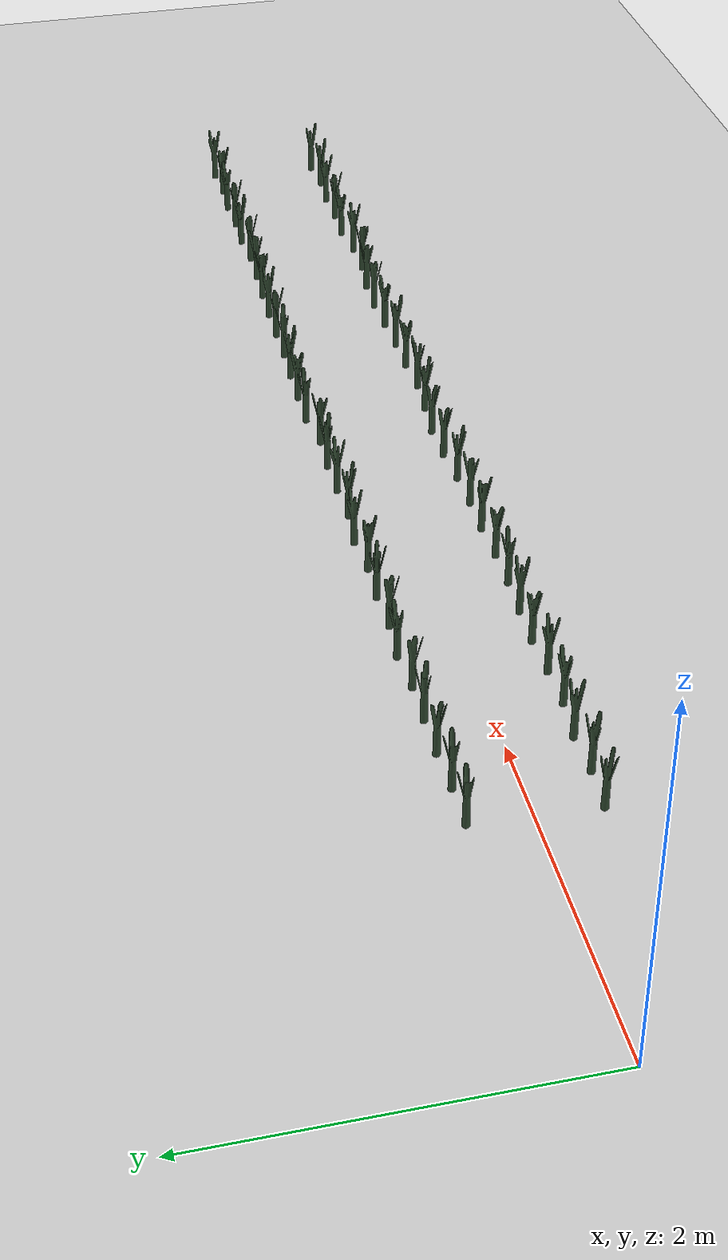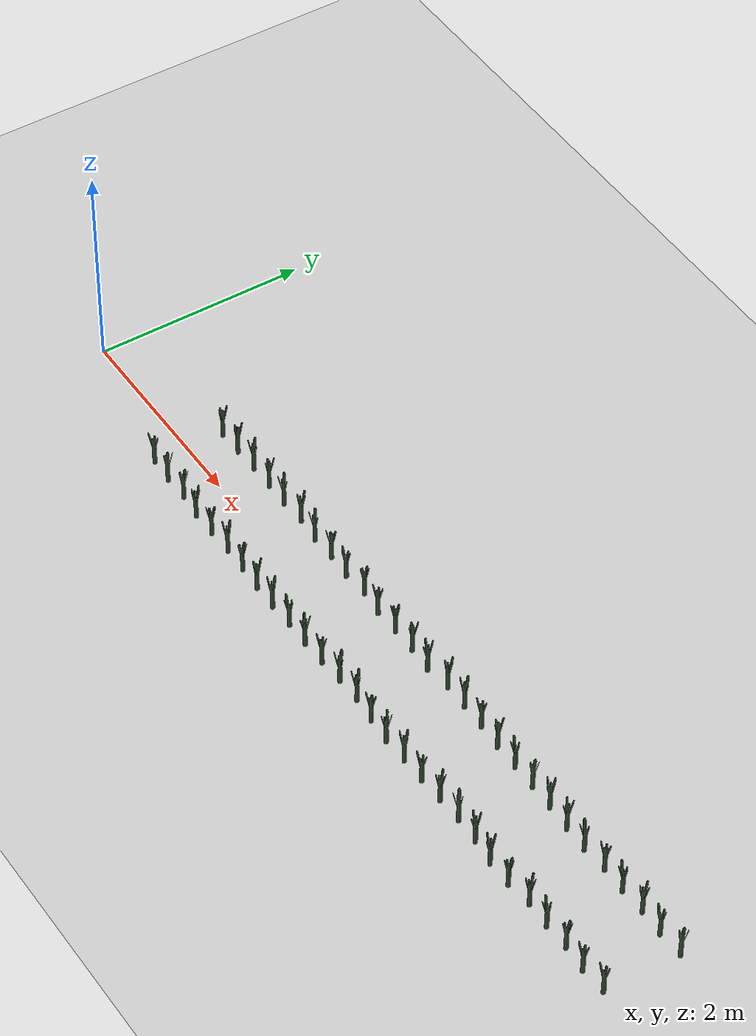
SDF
<sdf version="1.6">
 <world name="default">
  <light name="sun" type="directional">
   <pose>0 0 10 0 -0 0</pose>
   <diffuse>0.5 0.5 0.5 1</diffuse>
   <specular>0.1 0.1 0.1 1</specular>
   <attenuation>
    <range>1000</range>
    <constant>0.9</constant>
    <linear>0.01</linear>
    <quadratic>0.001</quadratic>
   </attenuation>
   <direction>0.9 0.5 -1</direction>
  </light>
  <scene><background>130 200 255 1</background><ambient>130 140 140 1</ambient></scene>
  <include><uri>model://dirt_plane</uri></include>
  <include>
   <uri>model://Leek</uri>
   <pose>1.500000 0.336028 0.15 0 0 -125.747567</pose>
   <static>0</static>
  </include>
  <include>
   <uri>model://Leek</uri>
   <pose>1.750000 0.337425 0.15 0 0 -113.177906</pose>
   <static>0</static>
  </include>
  <include><uri>model://Leek</uri><pose>2.000000 0.347456 0.15 0 0 -22.892589</pose><static>0</static></include>
  <include><uri>model://Leek</uri><pose>2.250000 0.347161 0.15 0 0 -25.551928</pose><static>0</static></include>
  <include><uri>model://Leek</uri><pose>2.500000 0.342596 0.15 0 0 -66.632094</pose><static>0</static></include>
  <include><uri>model://Leek</uri><pose>2.750000 0.360498 0.15 0 0 94.485629</pose><static>0</static></include>
  <include><uri>model://Leek</uri><pose>3.000000 0.340501 0.15 0 0 -85.488602</pose><static>0</static></include>
  <include><uri>model://Leek</uri><pose>3.250000 0.349792 0.15 0 0 -1.871295</pose><static>0</static></include>
  <include>
   <uri>model://Leek</uri>
   <pose>3.500000 0.338511 0.15 0 0 -103.398293</pose>
   <static>0</static>
  </include>
  <include><uri>model://Leek</uri><pose>3.750000 0.360318 0.15 0 0 92.866073</pose><static>0</static></include>
  <include>
   <uri>model://Leek</uri>
   <pose>4.000000 0.333678 0.15 0 0 -146.896751</pose>
   <static>0</static>
  </include>
  <include><uri>model://Leek</uri><pose>4.250000 0.344943 0.15 0 0 -45.515862</pose><static>0</static></include>
  <include><uri>model://Leek</uri><pose>4.500000 0.347155 0.15 0 0 -25.602284</pose><static>0</static></include>
  <include>
   <uri>model://Leek</uri>
   <pose>4.750000 0.334093 0.15 0 0 -143.166618</pose>
   <static>0</static>
  </include>
  <include><uri>model://Leek</uri><pose>5.000000 0.369558 0.15 0 0 176.025778</pose><static>0</static></include>
  <include><uri>model://Leek</uri><pose>5.250000 0.366976 0.15 0 0 152.788290</pose><static>0</static></include>
  <include><uri>model://Leek</uri><pose>5.500000 0.362991 0.15 0 0 116.918018</pose><static>0</static></include>
  <include><uri>model://Leek</uri><pose>5.750000 0.352774 0.15 0 0 24.963631</pose><static>0</static></include>
  <include><uri>model://Leek</uri><pose>6.000000 0.354518 0.15 0 0 40.664413</pose><static>0</static></include>
  <include><uri>model://Leek</uri><pose>6.250000 0.353366 0.15 0 0 30.294534</pose><static>0</static></include>
  <include><uri>model://Leek</uri><pose>6.500000 0.348083 0.15 0 0 -17.252331</pose><static>0</static></include>
  <include><uri>model://Leek</uri><pose>6.750000 0.338954 0.15 0 0 -99.416481</pose><static>0</static></include>
  <include>
   <uri>model://Leek</uri>
   <pose>7.000000 0.333552 0.15 0 0 -148.031409</pose>
   <static>0</static>
  </include>
  <include><uri>model://Leek</uri><pose>7.250000 0.352520 0.15 0 0 22.677690</pose><static>0</static></include>
  <include><uri>model://Leek</uri><pose>7.500000 0.346844 0.15 0 0 -28.406378</pose><static>0</static></include>
  <include><uri>model://Leek</uri><pose>7.750000 0.359112 0.15 0 0 82.008830</pose><static>0</static></include>
  <include><uri>model://Leek</uri><pose>8.000000 0.348271 0.15 0 0 -15.563473</pose><static>0</static></include>
  <include><uri>model://Leek</uri><pose>8.250000 0.361740 0.15 0 0 105.659037</pose><static>0</static></include>
  <include>
   <uri>model://Leek</uri>
   <pose>1.465753 -0.330717 0.15 0 0 173.550743</pose>
   <static>0</static>
  </include>
  <include><uri>model://Leek</uri><pose>1.715753 -0.345203 0.15 0 0 43.173037</pose><static>0</static></include>
  <include>
   <uri>model://Leek</uri>
   <pose>1.965753 -0.335466 0.15 0 0 130.802310</pose>
   <static>0</static>
  </include>
  <include>
   <uri>model://Leek</uri>
   <pose>2.215753 -0.361138 0.15 0 0 -100.241378</pose>
   <static>0</static>
  </include>
  <include>
   <uri>model://Leek</uri>
   <pose>2.465753 -0.356461 0.15 0 0 -58.151039</pose>
   <static>0</static>
  </include>
  <include><uri>model://Leek</uri><pose>2.715753 -0.347686 0.15 0 0 20.826603</pose><static>0</static></include>
  <include>
   <uri>model://Leek</uri>
   <pose>2.965753 -0.354330 0.15 0 0 -38.967471</pose>
   <static>0</static>
  </include>
  <include>
   <uri>model://Leek</uri>
   <pose>3.215753 -0.364655 0.15 0 0 -131.897804</pose>
   <static>0</static>
  </include>
  <include>
   <uri>model://Leek</uri>
   <pose>3.465753 -0.365837 0.15 0 0 -142.533923</pose>
   <static>0</static>
  </include>
  <include>
   <uri>model://Leek</uri>
   <pose>3.715753 -0.355926 0.15 0 0 -53.336970</pose>
   <static>0</static>
  </include>
  <include>
   <uri>model://Leek</uri>
   <pose>3.965753 -0.358958 0.15 0 0 -80.619407</pose>
   <static>0</static>
  </include>
  <include>
   <uri>model://Leek</uri>
   <pose>4.215753 -0.352370 0.15 0 0 -21.328975</pose>
   <static>0</static>
  </include>
  <include>
   <uri>model://Leek</uri>
   <pose>4.465753 -0.335791 0.15 0 0 127.877756</pose>
   <static>0</static>
  </include>
  <include>
   <uri>model://Leek</uri>
   <pose>4.715753 -0.330209 0.15 0 0 178.119065</pose>
   <static>0</static>
  </include>
  <include>
   <uri>model://Leek</uri>
   <pose>4.965753 -0.352358 0.15 0 0 -21.219890</pose>
   <static>0</static>
  </include>
  <include>
   <uri>model://Leek</uri>
   <pose>5.215753 -0.368764 0.15 0 0 -168.880289</pose>
   <static>0</static>
  </include>
  <include>
   <uri>model://Leek</uri>
   <pose>5.465753 -0.357466 0.15 0 0 -67.190263</pose>
   <static>0</static>
  </include>
  <include>
   <uri>model://Leek</uri>
   <pose>5.715753 -0.354476 0.15 0 0 -40.281068</pose>
   <static>0</static>
  </include>
  <include><uri>model://Leek</uri><pose>5.965753 -0.342964 0.15 0 0 63.328037</pose><static>0</static></include>
  <include>
   <uri>model://Leek</uri>
   <pose>6.215753 -0.332266 0.15 0 0 159.602102</pose>
   <static>0</static>
  </include>
  <include><uri>model://Leek</uri><pose>6.465753 -0.340073 0.15 0 0 89.345238</pose><static>0</static></include>
  <include>
   <uri>model://Leek</uri>
   <pose>6.715753 -0.367980 0.15 0 0 -161.816965</pose>
   <static>0</static>
  </include>
  <include>
   <uri>model://Leek</uri>
   <pose>6.965753 -0.364127 0.15 0 0 -127.141124</pose>
   <static>0</static>
  </include>
  <include>
   <uri>model://Leek</uri>
   <pose>7.215753 -0.335292 0.15 0 0 132.374693</pose>
   <static>0</static>
  </include>
  <include><uri>model://Leek</uri><pose>7.465753 -0.344784 0.15 0 0 46.940255</pose><static>0</static></include>
  <include>
   <uri>model://Leek</uri>
   <pose>7.715753 -0.336193 0.15 0 0 124.260414</pose>
   <static>0</static>
  </include>
  <include>
   <uri>model://Leek</uri>
   <pose>7.965753 -0.353776 0.15 0 0 -33.986443</pose>
   <static>0</static>
  </include>
  <include>
   <uri>model://Leek</uri>
   <pose>8.215753 -0.334931 0.15 0 0 135.619042</pose>
   <static>0</static>
  </include>
 </world>
</sdf>

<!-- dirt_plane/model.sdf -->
<sdf version="1.4">
<model name="dirt_plane">
  <static>true</static>
    <link name="link">
      <collision name="collision">
        <geometry>
          <plane>
            <normal>0 0 1</normal>
            <size>100 100</size>
          </plane>
        </geometry>
        <surface>
          <friction>
            <ode>
              <mu>100</mu>
              <mu2>50</mu2>
            </ode>
          </friction>
        </surface>
      </collision>
      <visual name="visual">
        <cast_shadows>false</cast_shadows>
        <geometry>
          <plane>
            <normal>0 0 1</normal>
            <size>100 100</size>
          </plane>
        </geometry>
        <material>
          <script>
            <uri>model://ground_plane/materials/scripts/my_ground_plane.material</uri>
            <uri>model://ground_plane/materials/textures</uri>
            <name>my_ground_plane/Dirt</name>
          </script>
        </material>
      </visual>
    </link>
  </model>
</sdf>

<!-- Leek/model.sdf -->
<sdf version='1.6'>
  <model name='Leek'>
    <link name='link'>
      <pose frame=''>0 0 0 0 -0 0</pose>
      <inertial>
        <mass>1</mass>
        <inertia>
          <ixx>0.145833</ixx>
          <ixy>0</ixy>
          <ixz>0</ixz>
          <iyy>0.145833</iyy>
          <iyz>0</iyz>
          <izz>0.125</izz>
        </inertia>
        <pose frame=''>0 0 0 0 -0 0</pose>
      </inertial>
      <self_collide>0</self_collide>
      <kinematic>0</kinematic>
      <gravity>1</gravity>
      <visual name='visual'>
        <geometry>
          <mesh>
            <uri>model://Leek/Poireau.dae</uri>
            <scale>1 1 1</scale>
          </mesh>
        </geometry>
        <material>
          <script>
            <name>Gazebo/Grey</name>
            <uri>file://media/materials/scripts/gazebo.material</uri>
          </script>
          <ambient>0.3 0.7 0.4 0</ambient>
          <diffuse>0.2 0.3 0.2 0</diffuse>
          <specular>0 0 0 1</specular>
          <emissive>0 0 0 1</emissive>
          <shader type='vertex'>
            <normal_map>__default__</normal_map>
          </shader>
        </material>
        <pose frame=''>0 0 -0.08 0 -0 0</pose>
        <cast_shadows>1</cast_shadows>
        <transparency>0</transparency>
      </visual>
      <collision name='collision'>
        <laser_retro>0</laser_retro>
        <max_contacts>10</max_contacts>
        <pose frame=''>0 0 0 0 -0 0</pose>
        <geometry>
          <cylinder>
            <radius>0.02</radius>
            <length>0.25</length>
          </cylinder>
        </geometry>
        <surface>
          <friction>
            <ode>
              <mu>1</mu>
              <mu2>1</mu2>
              <fdir1>0 0 0</fdir1>
              <slip1>0</slip1>
              <slip2>0</slip2>
            </ode>
            <torsional>
              <coefficient>1</coefficient>
              <patch_radius>0</patch_radius>
              <surface_radius>0</surface_radius>
              <use_patch_radius>1</use_patch_radius>
              <ode>
                <slip>0</slip>
              </ode>
            </torsional>
          </friction>
          <bounce>
            <restitution_coefficient>0</restitution_coefficient>
            <threshold>1e+06</threshold>
          </bounce>
          <contact>
            <collide_without_contact>0</collide_without_contact>
            <collide_without_contact_bitmask>1</collide_without_contact_bitmask>
            <collide_bitmask>1</collide_bitmask>
            <ode>
              <soft_cfm>0</soft_cfm>
              <soft_erp>0.2</soft_erp>
              <kp>1e+13</kp>
              <kd>1</kd>
              <max_vel>0.01</max_vel>
              <min_depth>0</min_depth>
            </ode>
            <bullet>
              <split_impulse>1</split_impulse>
              <split_impulse_penetration_threshold>-0.01</split_impulse_penetration_threshold>
              <soft_cfm>0</soft_cfm>
              <soft_erp>0.2</soft_erp>
              <kp>1e+13</kp>
              <kd>1</kd>
            </bullet>
          </contact>
        </surface>
      </collision>
    </link>
    <static>0</static>
    <allow_auto_disable>1</allow_auto_disable>
  </model>
</sdf>
